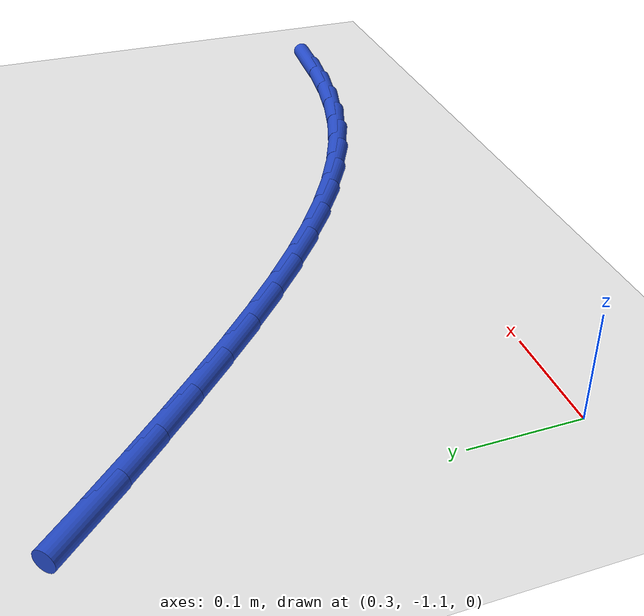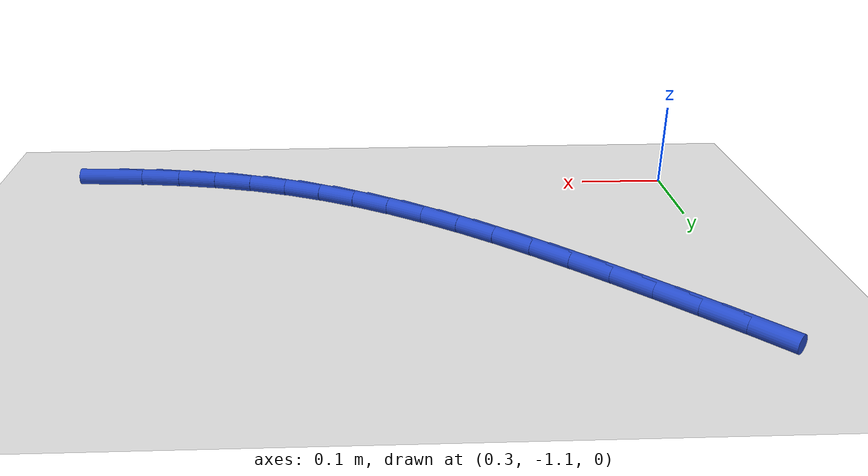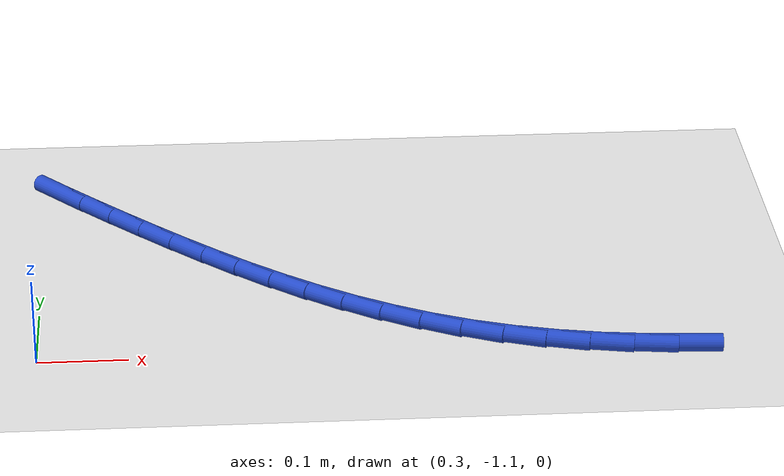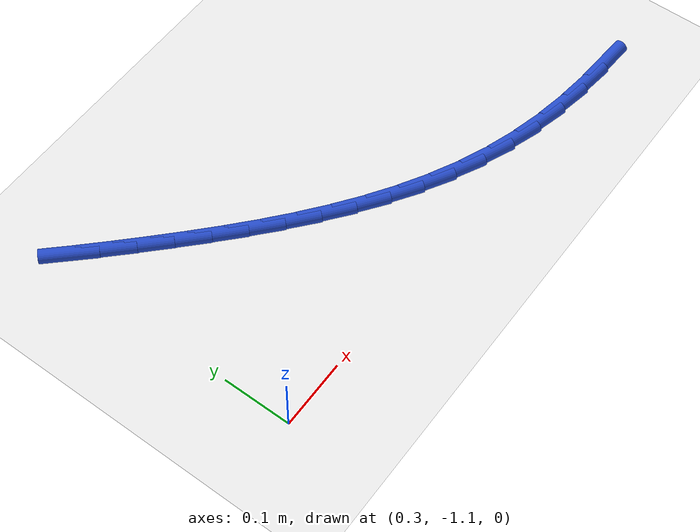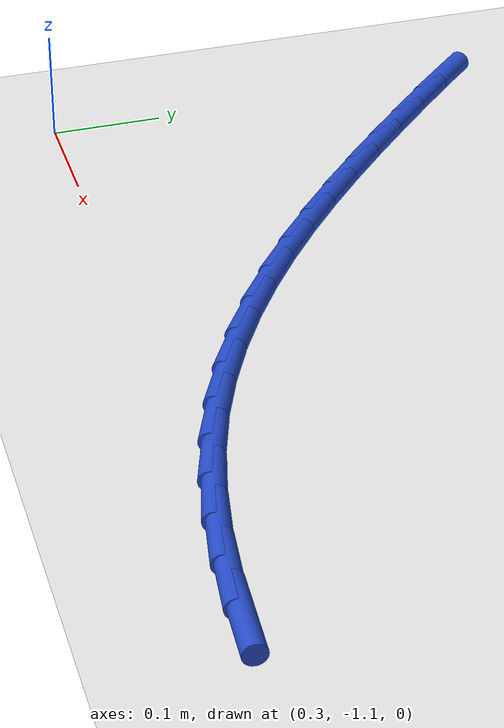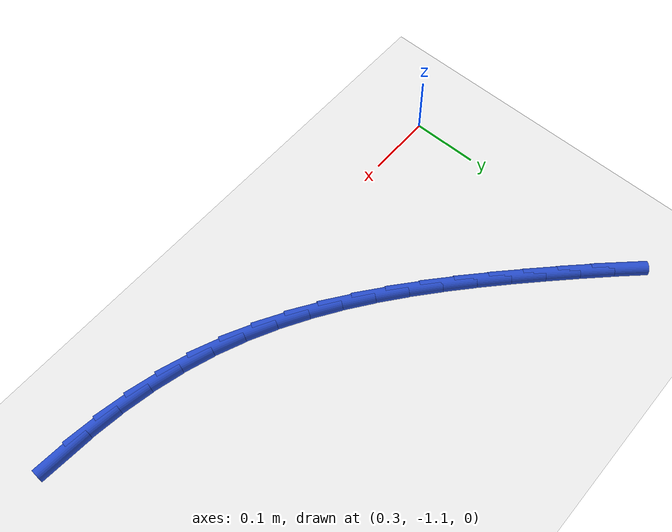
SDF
<sdf version="1.6">
 <world name="default">
  <model name="ground_plane">
   <static>1</static>
   <link name="link">
    <collision name="collision">
     <geometry><plane><normal>0 0 1</normal><size>100 100</size></plane></geometry>
     <surface><friction><ode><mu>100</mu><mu2>50</mu2></ode></friction></surface>
    </collision>
    <visual name="visual">
     <cast_shadows>0</cast_shadows>
     <geometry><plane><normal>0 0 1</normal><size>100 100</size></plane></geometry>
     <material>
      <script><uri>file://media/materials/scripts/gazebo.material</uri><name>Gazebo/WhiteGlow</name></script>
     </material>
    </visual>
   </link>
  </model>
  <model name="line">
   <link name="link_106">
    <pose>1.007216321990953 -1.1176242714437017 0.01 0 1.57 -0.06774144877331024</pose>
    <collision name="collision">
     <geometry><cylinder><radius>0.01</radius><length>0.08</length></cylinder></geometry>
    </collision>
    <visual name="visual">
     <material>
      <script><name>Gazebo/Blue</name><uri>file://media/materials/scripts/gazebo.material</uri></script>
     </material>
     <geometry><cylinder><radius>0.01</radius><length>0.08</length></cylinder></geometry>
    </visual>
   </link>
   <link name="link_107">
    <pose>0.9590295113280728 -1.1143550247942189 0.01 0 1.57 -0.12608932800722966</pose>
    <collision name="collision">
     <geometry><cylinder><radius>0.01</radius><length>0.08</length></cylinder></geometry>
    </collision>
    <visual name="visual">
     <material>
      <script><name>Gazebo/Blue</name><uri>file://media/materials/scripts/gazebo.material</uri></script>
     </material>
     <geometry><cylinder><radius>0.01</radius><length>0.08</length></cylinder></geometry>
    </visual>
   </link>
   <link name="link_108">
    <pose>0.9114712743862318 -1.108326456307324 0.01 0 1.57 -0.1884701849273596</pose>
    <collision name="collision">
     <geometry><cylinder><radius>0.01</radius><length>0.08</length></cylinder></geometry>
    </collision>
    <visual name="visual">
     <material>
      <script><name>Gazebo/Blue</name><uri>file://media/materials/scripts/gazebo.material</uri></script>
     </material>
     <geometry><cylinder><radius>0.01</radius><length>0.08</length></cylinder></geometry>
    </visual>
   </link>
   <link name="link_109">
    <pose>0.8647295091956204 -1.0994112169198866 0.01 0 1.57 -0.25513663561558225</pose>
    <collision name="collision">
     <geometry><cylinder><radius>0.01</radius><length>0.08</length></cylinder></geometry>
    </collision>
    <visual name="visual">
     <material>
      <script><name>Gazebo/Blue</name><uri>file://media/materials/scripts/gazebo.material</uri></script>
     </material>
     <geometry><cylinder><radius>0.01</radius><length>0.08</length></cylinder></geometry>
    </visual>
   </link>
   <link name="link_110">
    <pose>0.8189921137864316 -1.0874819575687769 0.01 0 1.57 -0.32623186547149385</pose>
    <collision name="collision">
     <geometry><cylinder><radius>0.01</radius><length>0.08</length></cylinder></geometry>
    </collision>
    <visual name="visual">
     <material>
      <script><name>Gazebo/Blue</name><uri>file://media/materials/scripts/gazebo.material</uri></script>
     </material>
     <geometry><cylinder><radius>0.01</radius><length>0.08</length></cylinder></geometry>
    </visual>
   </link>
   <link name="link_111">
    <pose>0.774446921970939 -1.0724114260352637 0.01 0 1.57 -0.39934733659268995</pose>
    <collision name="collision">
     <geometry><cylinder><radius>0.01</radius><length>0.08</length></cylinder></geometry>
    </collision>
    <visual name="visual">
     <material>
      <script><name>Gazebo/Blue</name><uri>file://media/materials/scripts/gazebo.material</uri></script>
     </material>
     <geometry><cylinder><radius>0.01</radius><length>0.08</length></cylinder></geometry>
    </visual>
   </link>
   <link name="link_112">
    <pose>0.731218391818378 -1.054167944451888 0.01 0 1.57 -0.4672387186971278</pose>
    <collision name="collision">
     <geometry><cylinder><radius>0.01</radius><length>0.08</length></cylinder></geometry>
    </collision>
    <visual name="visual">
     <material>
      <script><name>Gazebo/Blue</name><uri>file://media/materials/scripts/gazebo.material</uri></script>
     </material>
     <geometry><cylinder><radius>0.01</radius><length>0.08</length></cylinder></geometry>
    </visual>
   </link>
   <link name="link_113">
    <pose>0.68924888106078 -1.0329944529794732 0.01 0 1.57 -0.5282786633295636</pose>
    <collision name="collision">
     <geometry><cylinder><radius>0.01</radius><length>0.08</length></cylinder></geometry>
    </collision>
    <visual name="visual">
     <material>
      <script><name>Gazebo/Blue</name><uri>file://media/materials/scripts/gazebo.material</uri></script>
     </material>
     <geometry><cylinder><radius>0.01</radius><length>0.08</length></cylinder></geometry>
    </visual>
   </link>
   <link name="link_114">
    <pose>0.6484482421645628 -1.0091829116328952 0.01 0 1.57 -0.5823406053722923</pose>
    <collision name="collision">
     <geometry><cylinder><radius>0.01</radius><length>0.08</length></cylinder></geometry>
    </collision>
    <visual name="visual">
     <material>
      <script><name>Gazebo/Blue</name><uri>file://media/materials/scripts/gazebo.material</uri></script>
     </material>
     <geometry><cylinder><radius>0.01</radius><length>0.08</length></cylinder></geometry>
    </visual>
   </link>
   <link name="link_115">
    <pose>0.6087263275961423 -0.9830252804270283 0.01 0 1.57 -0.6295061623069184</pose>
    <collision name="collision">
     <geometry><cylinder><radius>0.01</radius><length>0.08</length></cylinder></geometry>
    </collision>
    <visual name="visual">
     <material>
      <script><name>Gazebo/Blue</name><uri>file://media/materials/scripts/gazebo.material</uri></script>
     </material>
     <geometry><cylinder><radius>0.01</radius><length>0.08</length></cylinder></geometry>
    </visual>
   </link>
   <link name="link_116">
    <pose>0.5699929898219351 -0.9548135193767473 0.01 0 1.57 -0.6699848439099737</pose>
    <collision name="collision">
     <geometry><cylinder><radius>0.01</radius><length>0.08</length></cylinder></geometry>
    </collision>
    <visual name="visual">
     <material>
      <script><name>Gazebo/Blue</name><uri>file://media/materials/scripts/gazebo.material</uri></script>
     </material>
     <geometry><cylinder><radius>0.01</radius><length>0.08</length></cylinder></geometry>
    </visual>
   </link>
   <link name="link_117">
    <pose>0.5321580813083571 -0.9248395884969266 0.01 0 1.57 -0.7040471588440678</pose>
    <collision name="collision">
     <geometry><cylinder><radius>0.01</radius><length>0.08</length></cylinder></geometry>
    </collision>
    <visual name="visual">
     <material>
      <script><name>Gazebo/Blue</name><uri>file://media/materials/scripts/gazebo.material</uri></script>
     </material>
     <geometry><cylinder><radius>0.01</radius><length>0.08</length></cylinder></geometry>
    </visual>
   </link>
   <link name="link_118">
    <pose>0.4951314545218257 -0.8933954478024421 0.01 0 1.57 -0.7319737135218526</pose>
    <collision name="collision">
     <geometry><cylinder><radius>0.01</radius><length>0.08</length></cylinder></geometry>
    </collision>
    <visual name="visual">
     <material>
      <script><name>Gazebo/Blue</name><uri>file://media/materials/scripts/gazebo.material</uri></script>
     </material>
     <geometry><cylinder><radius>0.01</radius><length>0.08</length></cylinder></geometry>
    </visual>
   </link>
   <link name="link_119">
    <pose>0.4588229619287572 -0.8607730573081681 0.01 0 1.57 -0.7540187978329537</pose>
    <collision name="collision">
     <geometry><cylinder><radius>0.01</radius><length>0.08</length></cylinder></geometry>
    </collision>
    <visual name="visual">
     <material>
      <script><name>Gazebo/Blue</name><uri>file://media/materials/scripts/gazebo.material</uri></script>
     </material>
     <geometry><cylinder><radius>0.01</radius><length>0.08</length></cylinder></geometry>
    </visual>
   </link>
   <link name="link_120">
    <pose>0.4231424559955677 -0.8272643770289791 0.01 0 1.57 -0.7703852601343737</pose>
    <collision name="collision">
     <geometry><cylinder><radius>0.01</radius><length>0.08</length></cylinder></geometry>
    </collision>
    <visual name="visual">
     <material>
      <script><name>Gazebo/Blue</name><uri>file://media/materials/scripts/gazebo.material</uri></script>
     </material>
     <geometry><cylinder><radius>0.01</radius><length>0.08</length></cylinder></geometry>
    </visual>
   </link>
   <link name="link_121">
    <pose>0.387999789188674 -0.7931613669797504 0.01 0 1.57 -0.7817353417047864</pose>
    <collision name="collision">
     <geometry><cylinder><radius>0.01</radius><length>0.08</length></cylinder></geometry>
    </collision>
    <visual name="visual">
     <material>
      <script><name>Gazebo/Blue</name><uri>file://media/materials/scripts/gazebo.material</uri></script>
     </material>
     <geometry><cylinder><radius>0.01</radius><length>0.08</length></cylinder></geometry>
    </visual>
   </link>
   <link name="link_122">
    <pose>0.3533199925393944 -0.7587346961307285 0.01 0 1.57 -0.7942069607842154</pose>
    <collision name="collision">
     <geometry><cylinder><radius>0.01</radius><length>0.08</length></cylinder></geometry>
    </collision>
    <visual name="visual">
     <material>
      <script><name>Gazebo/Blue</name><uri>file://media/materials/scripts/gazebo.material</uri></script>
     </material>
     <geometry><cylinder><radius>0.01</radius><length>0.08</length></cylinder></geometry>
    </visual>
   </link>
   <link name="link_123">
    <pose>0.31920234291761435 -0.7240106179920145 0.01 0 1.57 -0.8117674223988388</pose>
    <collision name="collision">
     <geometry><cylinder><radius>0.01</radius><length>0.08</length></cylinder></geometry>
    </collision>
    <visual name="visual">
     <material>
      <script><name>Gazebo/Blue</name><uri>file://media/materials/scripts/gazebo.material</uri></script>
     </material>
     <geometry><cylinder><radius>0.01</radius><length>0.08</length></cylinder></geometry>
    </visual>
   </link>
  </model>
 </world>
</sdf>
